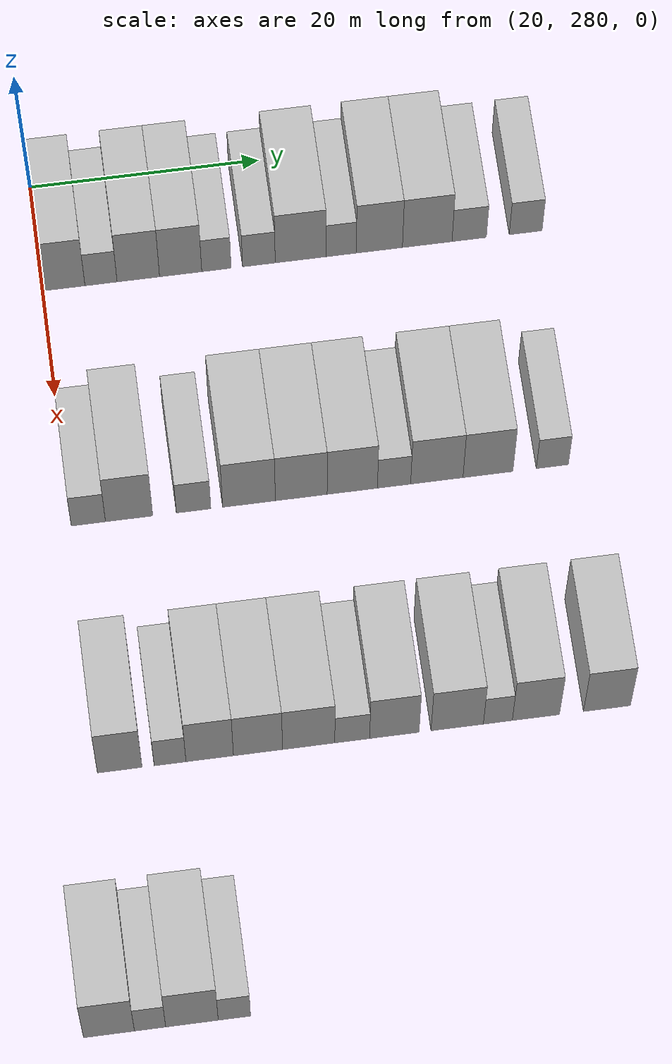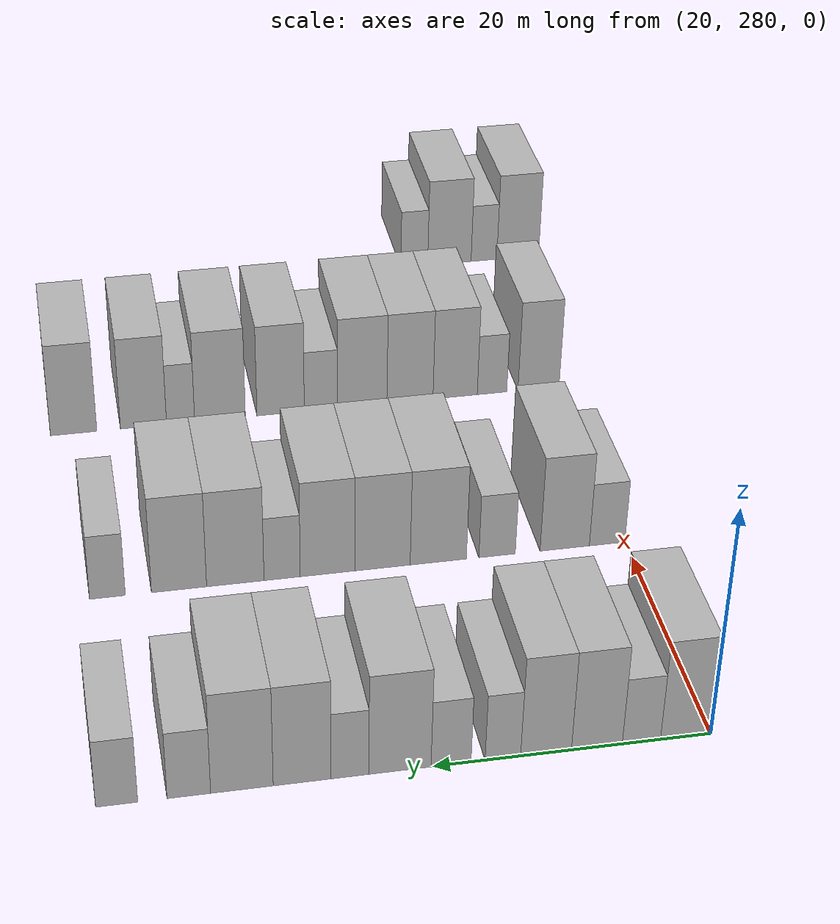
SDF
<sdf version="1.6">
 <world name="default">
  <model name="building_159">
   <static>1</static>
   <pose>25.0000 281.8248 0 0.000000 0.000000 0.000000</pose>
   <link name="link">
    <pose>0 0 4.50 0 0 0</pose>
    <collision name="collision"><geometry><box><size>10.0000 3.6781 9.0000</size></box></geometry></collision>
    <visual name="visual">
     <cast_shadows>0</cast_shadows>
     <geometry><box><size>10.0000 3.6781 9.0000</size></box></geometry>
     <material>
      <script>
       <uri>model://HANNAS_wall/materials/scripts</uri>
       <uri>model://HANNAS_wall/materials/textures</uri>
       <name>vrc/HANNAS_wall</name>
      </script>
     </material>
    </visual>
   </link>
  </model>
  <model name="building_160">
   <static>1</static>
   <pose>25.0000 285.0547 0 0.000000 0.000000 0.000000</pose>
   <link name="link">
    <pose>0 0 3.00 0 0 0</pose>
    <collision name="collision"><geometry><box><size>10.0000 2.7817 6.0000</size></box></geometry></collision>
    <visual name="visual">
     <cast_shadows>0</cast_shadows>
     <geometry><box><size>10.0000 2.7817 6.0000</size></box></geometry>
     <material>
      <script>
       <uri>model://HANNAS_wall/materials/scripts</uri>
       <uri>model://HANNAS_wall/materials/textures</uri>
       <name>vrc/HANNAS_wall</name>
      </script>
     </material>
    </visual>
   </link>
  </model>
  <model name="building_161">
   <static>1</static>
   <pose>25.0000 288.2849 0 0.000000 0.000000 0.000000</pose>
   <link name="link">
    <pose>0 0 4.50 0 0 0</pose>
    <collision name="collision"><geometry><box><size>10.0000 3.6786 9.0000</size></box></geometry></collision>
    <visual name="visual">
     <cast_shadows>0</cast_shadows>
     <geometry><box><size>10.0000 3.6786 9.0000</size></box></geometry>
     <material>
      <script>
       <uri>model://HANNAS_wall/materials/scripts</uri>
       <uri>model://HANNAS_wall/materials/textures</uri>
       <name>vrc/HANNAS_wall</name>
      </script>
     </material>
    </visual>
   </link>
  </model>
  <model name="building_162">
   <static>1</static>
   <pose>25.0000 291.9534 0 0.000000 0.000000 0.000000</pose>
   <link name="link">
    <pose>0 0 4.50 0 0 0</pose>
    <collision name="collision"><geometry><box><size>10.0000 3.6583 9.0000</size></box></geometry></collision>
    <visual name="visual">
     <cast_shadows>0</cast_shadows>
     <geometry><box><size>10.0000 3.6583 9.0000</size></box></geometry>
     <material>
      <script>
       <uri>model://HANNAS_wall/materials/scripts</uri>
       <uri>model://HANNAS_wall/materials/textures</uri>
       <name>vrc/HANNAS_wall</name>
      </script>
     </material>
    </visual>
   </link>
  </model>
  <model name="building_163">
   <static>1</static>
   <pose>25.0000 295.0538 0 0.000000 0.000000 0.000000</pose>
   <link name="link">
    <pose>0 0 3.00 0 0 0</pose>
    <collision name="collision"><geometry><box><size>10.0000 2.5426 6.0000</size></box></geometry></collision>
    <visual name="visual">
     <cast_shadows>0</cast_shadows>
     <geometry><box><size>10.0000 2.5426 6.0000</size></box></geometry>
     <material>
      <script>
       <uri>model://HANNAS_wall/materials/scripts</uri>
       <uri>model://HANNAS_wall/materials/textures</uri>
       <name>vrc/HANNAS_wall</name>
      </script>
     </material>
    </visual>
   </link>
  </model>
  <model name="building_164">
   <static>1</static>
   <pose>25.0000 298.7448 0 0.000000 0.000000 0.000000</pose>
   <link name="link">
    <pose>0 0 3.00 0 0 0</pose>
    <collision name="collision"><geometry><box><size>10.0000 2.8395 6.0000</size></box></geometry></collision>
    <visual name="visual">
     <cast_shadows>0</cast_shadows>
     <geometry><box><size>10.0000 2.8395 6.0000</size></box></geometry>
     <material>
      <script>
       <uri>model://HANNAS_wall/materials/scripts</uri>
       <uri>model://HANNAS_wall/materials/textures</uri>
       <name>vrc/HANNAS_wall</name>
      </script>
     </material>
    </visual>
   </link>
  </model>
  <model name="building_165">
   <static>1</static>
   <pose>25.0000 302.3678 0 0.000000 0.000000 0.000000</pose>
   <link name="link">
    <pose>0 0 4.50 0 0 0</pose>
    <collision name="collision"><geometry><box><size>10.0000 4.4065 9.0000</size></box></geometry></collision>
    <visual name="visual">
     <cast_shadows>0</cast_shadows>
     <geometry><box><size>10.0000 4.4065 9.0000</size></box></geometry>
     <material>
      <script>
       <uri>model://HANNAS_wall/materials/scripts</uri>
       <uri>model://HANNAS_wall/materials/textures</uri>
       <name>vrc/HANNAS_wall</name>
      </script>
     </material>
    </visual>
   </link>
  </model>
  <model name="building_166">
   <static>1</static>
   <pose>25.0000 305.8873 0 0.000000 0.000000 0.000000</pose>
   <link name="link">
    <pose>0 0 3.00 0 0 0</pose>
    <collision name="collision"><geometry><box><size>10.0000 2.6325 6.0000</size></box></geometry></collision>
    <visual name="visual">
     <cast_shadows>0</cast_shadows>
     <geometry><box><size>10.0000 2.6325 6.0000</size></box></geometry>
     <material>
      <script>
       <uri>model://HANNAS_wall/materials/scripts</uri>
       <uri>model://HANNAS_wall/materials/textures</uri>
       <name>vrc/HANNAS_wall</name>
      </script>
     </material>
    </visual>
   </link>
  </model>
  <model name="building_167">
   <static>1</static>
   <pose>25.0000 309.2179 0 0.000000 0.000000 0.000000</pose>
   <link name="link">
    <pose>0 0 4.50 0 0 0</pose>
    <collision name="collision"><geometry><box><size>10.0000 4.0286 9.0000</size></box></geometry></collision>
    <visual name="visual">
     <cast_shadows>0</cast_shadows>
     <geometry><box><size>10.0000 4.0286 9.0000</size></box></geometry>
     <material>
      <script>
       <uri>model://HANNAS_wall/materials/scripts</uri>
       <uri>model://HANNAS_wall/materials/textures</uri>
       <name>vrc/HANNAS_wall</name>
      </script>
     </material>
    </visual>
   </link>
  </model>
  <model name="building_168">
   <static>1</static>
   <pose>25.0000 313.3952 0 0.000000 0.000000 0.000000</pose>
   <link name="link">
    <pose>0 0 4.50 0 0 0</pose>
    <collision name="collision"><geometry><box><size>10.0000 4.3261 9.0000</size></box></geometry></collision>
    <visual name="visual">
     <cast_shadows>0</cast_shadows>
     <geometry><box><size>10.0000 4.3261 9.0000</size></box></geometry>
     <material>
      <script>
       <uri>model://HANNAS_wall/materials/scripts</uri>
       <uri>model://HANNAS_wall/materials/textures</uri>
       <name>vrc/HANNAS_wall</name>
      </script>
     </material>
    </visual>
   </link>
  </model>
  <model name="building_169">
   <static>1</static>
   <pose>25.0000 317.0565 0 0.000000 0.000000 0.000000</pose>
   <link name="link">
    <pose>0 0 3.00 0 0 0</pose>
    <collision name="collision"><geometry><box><size>10.0000 2.9965 6.0000</size></box></geometry></collision>
    <visual name="visual">
     <cast_shadows>0</cast_shadows>
     <geometry><box><size>10.0000 2.9965 6.0000</size></box></geometry>
     <material>
      <script>
       <uri>model://HANNAS_wall/materials/scripts</uri>
       <uri>model://HANNAS_wall/materials/textures</uri>
       <name>vrc/HANNAS_wall</name>
      </script>
     </material>
    </visual>
   </link>
  </model>
  <model name="building_170">
   <static>1</static>
   <pose>25.0000 321.9890 0 0.000000 0.000000 0.000000</pose>
   <link name="link">
    <pose>0 0 3.00 0 0 0</pose>
    <collision name="collision"><geometry><box><size>10.0000 2.8684 6.0000</size></box></geometry></collision>
    <visual name="visual">
     <cast_shadows>0</cast_shadows>
     <geometry><box><size>10.0000 2.8684 6.0000</size></box></geometry>
     <material>
      <script>
       <uri>model://HANNAS_wall/materials/scripts</uri>
       <uri>model://HANNAS_wall/materials/textures</uri>
       <name>vrc/HANNAS_wall</name>
      </script>
     </material>
    </visual>
   </link>
  </model>
  <model name="building_340">
   <static>1</static>
   <pose>47.0000 281.5024 0 0.000000 0.000000 0.000000</pose>
   <link name="link">
    <pose>0 0 3.00 0 0 0</pose>
    <collision name="collision"><geometry><box><size>10.0000 2.8894 6.0000</size></box></geometry></collision>
    <visual name="visual">
     <cast_shadows>0</cast_shadows>
     <geometry><box><size>10.0000 2.8894 6.0000</size></box></geometry>
     <material>
      <script>
       <uri>model://HANNAS_wall/materials/scripts</uri>
       <uri>model://HANNAS_wall/materials/textures</uri>
       <name>vrc/HANNAS_wall</name>
      </script>
     </material>
    </visual>
   </link>
  </model>
  <model name="building_341">
   <static>1</static>
   <pose>47.0000 284.9434 0 0.000000 0.000000 0.000000</pose>
   <link name="link">
    <pose>0 0 4.50 0 0 0</pose>
    <collision name="collision"><geometry><box><size>10.0000 3.9927 9.0000</size></box></geometry></collision>
    <visual name="visual">
     <cast_shadows>0</cast_shadows>
     <geometry><box><size>10.0000 3.9927 9.0000</size></box></geometry>
     <material>
      <script>
       <uri>model://HANNAS_wall/materials/scripts</uri>
       <uri>model://HANNAS_wall/materials/textures</uri>
       <name>vrc/HANNAS_wall</name>
      </script>
     </material>
    </visual>
   </link>
  </model>
  <model name="building_342">
   <static>1</static>
   <pose>47.0000 290.4003 0 0.000000 0.000000 0.000000</pose>
   <link name="link">
    <pose>0 0 3.00 0 0 0</pose>
    <collision name="collision"><geometry><box><size>10.0000 2.9210 6.0000</size></box></geometry></collision>
    <visual name="visual">
     <cast_shadows>0</cast_shadows>
     <geometry><box><size>10.0000 2.9210 6.0000</size></box></geometry>
     <material>
      <script>
       <uri>model://HANNAS_wall/materials/scripts</uri>
       <uri>model://HANNAS_wall/materials/textures</uri>
       <name>vrc/HANNAS_wall</name>
      </script>
     </material>
    </visual>
   </link>
  </model>
  <model name="building_343">
   <static>1</static>
   <pose>47.0000 295.0999 0 0.000000 0.000000 0.000000</pose>
   <link name="link">
    <pose>0 0 4.50 0 0 0</pose>
    <collision name="collision"><geometry><box><size>10.0000 4.4783 9.0000</size></box></geometry></collision>
    <visual name="visual">
     <cast_shadows>0</cast_shadows>
     <geometry><box><size>10.0000 4.4783 9.0000</size></box></geometry>
     <material>
      <script>
       <uri>model://HANNAS_wall/materials/scripts</uri>
       <uri>model://HANNAS_wall/materials/textures</uri>
       <name>vrc/HANNAS_wall</name>
      </script>
     </material>
    </visual>
   </link>
  </model>
  <model name="building_344">
   <static>1</static>
   <pose>47.0000 299.5339 0 0.000000 0.000000 0.000000</pose>
   <link name="link">
    <pose>0 0 4.50 0 0 0</pose>
    <collision name="collision"><geometry><box><size>10.0000 4.3896 9.0000</size></box></geometry></collision>
    <visual name="visual">
     <cast_shadows>0</cast_shadows>
     <geometry><box><size>10.0000 4.3896 9.0000</size></box></geometry>
     <material>
      <script>
       <uri>model://HANNAS_wall/materials/scripts</uri>
       <uri>model://HANNAS_wall/materials/textures</uri>
       <name>vrc/HANNAS_wall</name>
      </script>
     </material>
    </visual>
   </link>
  </model>
  <model name="building_345">
   <static>1</static>
   <pose>47.0000 303.8648 0 0.000000 0.000000 0.000000</pose>
   <link name="link">
    <pose>0 0 4.50 0 0 0</pose>
    <collision name="collision"><geometry><box><size>10.0000 4.2723 9.0000</size></box></geometry></collision>
    <visual name="visual">
     <cast_shadows>0</cast_shadows>
     <geometry><box><size>10.0000 4.2723 9.0000</size></box></geometry>
     <material>
      <script>
       <uri>model://HANNAS_wall/materials/scripts</uri>
       <uri>model://HANNAS_wall/materials/textures</uri>
       <name>vrc/HANNAS_wall</name>
      </script>
     </material>
    </visual>
   </link>
  </model>
  <model name="building_346">
   <static>1</static>
   <pose>47.0000 307.4149 0 0.000000 0.000000 0.000000</pose>
   <link name="link">
    <pose>0 0 3.00 0 0 0</pose>
    <collision name="collision"><geometry><box><size>10.0000 2.8280 6.0000</size></box></geometry></collision>
    <visual name="visual">
     <cast_shadows>0</cast_shadows>
     <geometry><box><size>10.0000 2.8280 6.0000</size></box></geometry>
     <material>
      <script>
       <uri>model://HANNAS_wall/materials/scripts</uri>
       <uri>model://HANNAS_wall/materials/textures</uri>
       <name>vrc/HANNAS_wall</name>
      </script>
     </material>
    </visual>
   </link>
  </model>
  <model name="building_347">
   <static>1</static>
   <pose>47.0000 311.0594 0 0.000000 0.000000 0.000000</pose>
   <link name="link">
    <pose>0 0 4.50 0 0 0</pose>
    <collision name="collision"><geometry><box><size>10.0000 4.4609 9.0000</size></box></geometry></collision>
    <visual name="visual">
     <cast_shadows>0</cast_shadows>
     <geometry><box><size>10.0000 4.4609 9.0000</size></box></geometry>
     <material>
      <script>
       <uri>model://HANNAS_wall/materials/scripts</uri>
       <uri>model://HANNAS_wall/materials/textures</uri>
       <name>vrc/HANNAS_wall</name>
      </script>
     </material>
    </visual>
   </link>
  </model>
  <model name="building_348">
   <static>1</static>
   <pose>47.0000 315.4157 0 0.000000 0.000000 0.000000</pose>
   <link name="link">
    <pose>0 0 4.50 0 0 0</pose>
    <collision name="collision"><geometry><box><size>10.0000 4.2518 9.0000</size></box></geometry></collision>
    <visual name="visual">
     <cast_shadows>0</cast_shadows>
     <geometry><box><size>10.0000 4.2518 9.0000</size></box></geometry>
     <material>
      <script>
       <uri>model://HANNAS_wall/materials/scripts</uri>
       <uri>model://HANNAS_wall/materials/textures</uri>
       <name>vrc/HANNAS_wall</name>
      </script>
     </material>
    </visual>
   </link>
  </model>
  <model name="building_349">
   <static>1</static>
   <pose>47.0000 320.9104 0 0.000000 0.000000 0.000000</pose>
   <link name="link">
    <pose>0 0 3.00 0 0 0</pose>
    <collision name="collision"><geometry><box><size>10.0000 2.7376 6.0000</size></box></geometry></collision>
    <visual name="visual">
     <cast_shadows>0</cast_shadows>
     <geometry><box><size>10.0000 2.7376 6.0000</size></box></geometry>
     <material>
      <script>
       <uri>model://HANNAS_wall/materials/scripts</uri>
       <uri>model://HANNAS_wall/materials/textures</uri>
       <name>vrc/HANNAS_wall</name>
      </script>
     </material>
    </visual>
   </link>
  </model>
  <model name="building_524">
   <static>1</static>
   <pose>69.0000 281.6301 0 0.000000 0.000000 0.000000</pose>
   <link name="link">
    <pose>0 0 4.50 0 0 0</pose>
    <collision name="collision"><geometry><box><size>10.0000 3.6830 9.0000</size></box></geometry></collision>
    <visual name="visual">
     <cast_shadows>0</cast_shadows>
     <geometry><box><size>10.0000 3.6830 9.0000</size></box></geometry>
     <material>
      <script>
       <uri>model://HANNAS_wall/materials/scripts</uri>
       <uri>model://HANNAS_wall/materials/textures</uri>
       <name>vrc/HANNAS_wall</name>
      </script>
     </material>
    </visual>
   </link>
  </model>
  <model name="building_525">
   <static>1</static>
   <pose>69.0000 285.7857 0 0.000000 0.000000 0.000000</pose>
   <link name="link">
    <pose>0 0 3.00 0 0 0</pose>
    <collision name="collision"><geometry><box><size>10.0000 2.6282 6.0000</size></box></geometry></collision>
    <visual name="visual">
     <cast_shadows>0</cast_shadows>
     <geometry><box><size>10.0000 2.6282 6.0000</size></box></geometry>
     <material>
      <script>
       <uri>model://HANNAS_wall/materials/scripts</uri>
       <uri>model://HANNAS_wall/materials/textures</uri>
       <name>vrc/HANNAS_wall</name>
      </script>
     </material>
    </visual>
   </link>
  </model>
  <model name="building_526">
   <static>1</static>
   <pose>69.0000 289.0618 0 0.000000 0.000000 0.000000</pose>
   <link name="link">
    <pose>0 0 4.50 0 0 0</pose>
    <collision name="collision"><geometry><box><size>10.0000 3.9239 9.0000</size></box></geometry></collision>
    <visual name="visual">
     <cast_shadows>0</cast_shadows>
     <geometry><box><size>10.0000 3.9239 9.0000</size></box></geometry>
     <material>
      <script>
       <uri>model://HANNAS_wall/materials/scripts</uri>
       <uri>model://HANNAS_wall/materials/textures</uri>
       <name>vrc/HANNAS_wall</name>
      </script>
     </material>
    </visual>
   </link>
  </model>
  <model name="building_527">
   <static>1</static>
   <pose>69.0000 293.0553 0 0.000000 0.000000 0.000000</pose>
   <link name="link">
    <pose>0 0 4.50 0 0 0</pose>
    <collision name="collision"><geometry><box><size>10.0000 4.0632 9.0000</size></box></geometry></collision>
    <visual name="visual">
     <cast_shadows>0</cast_shadows>
     <geometry><box><size>10.0000 4.0632 9.0000</size></box></geometry>
     <material>
      <script>
       <uri>model://HANNAS_wall/materials/scripts</uri>
       <uri>model://HANNAS_wall/materials/textures</uri>
       <name>vrc/HANNAS_wall</name>
      </script>
     </material>
    </visual>
   </link>
  </model>
  <model name="building_528">
   <static>1</static>
   <pose>69.0000 297.2520 0 0.000000 0.000000 0.000000</pose>
   <link name="link">
    <pose>0 0 4.50 0 0 0</pose>
    <collision name="collision"><geometry><box><size>10.0000 4.3303 9.0000</size></box></geometry></collision>
    <visual name="visual">
     <cast_shadows>0</cast_shadows>
     <geometry><box><size>10.0000 4.3303 9.0000</size></box></geometry>
     <material>
      <script>
       <uri>model://HANNAS_wall/materials/scripts</uri>
       <uri>model://HANNAS_wall/materials/textures</uri>
       <name>vrc/HANNAS_wall</name>
      </script>
     </material>
    </visual>
   </link>
  </model>
  <model name="building_529">
   <static>1</static>
   <pose>69.0000 300.8608 0 0.000000 0.000000 0.000000</pose>
   <link name="link">
    <pose>0 0 3.00 0 0 0</pose>
    <collision name="collision"><geometry><box><size>10.0000 2.8874 6.0000</size></box></geometry></collision>
    <visual name="visual">
     <cast_shadows>0</cast_shadows>
     <geometry><box><size>10.0000 2.8874 6.0000</size></box></geometry>
     <material>
      <script>
       <uri>model://HANNAS_wall/materials/scripts</uri>
       <uri>model://HANNAS_wall/materials/textures</uri>
       <name>vrc/HANNAS_wall</name>
      </script>
     </material>
    </visual>
   </link>
  </model>
  <model name="building_530">
   <static>1</static>
   <pose>69.0000 304.3549 0 0.000000 0.000000 0.000000</pose>
   <link name="link">
    <pose>0 0 4.50 0 0 0</pose>
    <collision name="collision"><geometry><box><size>10.0000 4.1009 9.0000</size></box></geometry></collision>
    <visual name="visual">
     <cast_shadows>0</cast_shadows>
     <geometry><box><size>10.0000 4.1009 9.0000</size></box></geometry>
     <material>
      <script>
       <uri>model://HANNAS_wall/materials/scripts</uri>
       <uri>model://HANNAS_wall/materials/textures</uri>
       <name>vrc/HANNAS_wall</name>
      </script>
     </material>
    </visual>
   </link>
  </model>
  <model name="building_531">
   <static>1</static>
   <pose>69.0000 309.5823 0 0.000000 0.000000 0.000000</pose>
   <link name="link">
    <pose>0 0 4.50 0 0 0</pose>
    <collision name="collision"><geometry><box><size>10.0000 4.3538 9.0000</size></box></geometry></collision>
    <visual name="visual">
     <cast_shadows>0</cast_shadows>
     <geometry><box><size>10.0000 4.3538 9.0000</size></box></geometry>
     <material>
      <script>
       <uri>model://HANNAS_wall/materials/scripts</uri>
       <uri>model://HANNAS_wall/materials/textures</uri>
       <name>vrc/HANNAS_wall</name>
      </script>
     </material>
    </visual>
   </link>
  </model>
  <model name="building_532">
   <static>1</static>
   <pose>69.0000 312.9630 0 0.000000 0.000000 0.000000</pose>
   <link name="link">
    <pose>0 0 3.00 0 0 0</pose>
    <collision name="collision"><geometry><box><size>10.0000 2.4078 6.0000</size></box></geometry></collision>
    <visual name="visual">
     <cast_shadows>0</cast_shadows>
     <geometry><box><size>10.0000 2.4078 6.0000</size></box></geometry>
     <material>
      <script>
       <uri>model://HANNAS_wall/materials/scripts</uri>
       <uri>model://HANNAS_wall/materials/textures</uri>
       <name>vrc/HANNAS_wall</name>
      </script>
     </material>
    </visual>
   </link>
  </model>
  <model name="building_533">
   <static>1</static>
   <pose>69.0000 316.1335 0 0.000000 0.000000 0.000000</pose>
   <link name="link">
    <pose>0 0 4.50 0 0 0</pose>
    <collision name="collision"><geometry><box><size>10.0000 3.9331 9.0000</size></box></geometry></collision>
    <visual name="visual">
     <cast_shadows>0</cast_shadows>
     <geometry><box><size>10.0000 3.9331 9.0000</size></box></geometry>
     <material>
      <script>
       <uri>model://HANNAS_wall/materials/scripts</uri>
       <uri>model://HANNAS_wall/materials/textures</uri>
       <name>vrc/HANNAS_wall</name>
      </script>
     </material>
    </visual>
   </link>
  </model>
  <model name="building_534">
   <static>1</static>
   <pose>69.0000 322.0591 0 0.000000 0.000000 0.000000</pose>
   <link name="link">
    <pose>0 0 4.50 0 0 0</pose>
    <collision name="collision"><geometry><box><size>10.0000 3.9183 9.0000</size></box></geometry></collision>
    <visual name="visual">
     <cast_shadows>0</cast_shadows>
     <geometry><box><size>10.0000 3.9183 9.0000</size></box></geometry>
     <material>
      <script>
       <uri>model://HANNAS_wall/materials/scripts</uri>
       <uri>model://HANNAS_wall/materials/textures</uri>
       <name>vrc/HANNAS_wall</name>
      </script>
     </material>
    </visual>
   </link>
  </model>
  <model name="building_709">
   <static>1</static>
   <pose>91.0000 278.2434 0 0.000000 0.000000 0.000000</pose>
   <link name="link">
    <pose>0 0 4.50 0 0 0</pose>
    <collision name="collision"><geometry><box><size>10.0000 4.0943 9.0000</size></box></geometry></collision>
    <visual name="visual">
     <cast_shadows>0</cast_shadows>
     <geometry><box><size>10.0000 4.0943 9.0000</size></box></geometry>
     <material>
      <script>
       <uri>model://HANNAS_wall/materials/scripts</uri>
       <uri>model://HANNAS_wall/materials/textures</uri>
       <name>vrc/HANNAS_wall</name>
      </script>
     </material>
    </visual>
   </link>
  </model>
  <model name="building_710">
   <static>1</static>
   <pose>91.0000 281.5506 0 0.000000 0.000000 0.000000</pose>
   <link name="link">
    <pose>0 0 3.00 0 0 0</pose>
    <collision name="collision"><geometry><box><size>10.0000 2.5200 6.0000</size></box></geometry></collision>
    <visual name="visual">
     <cast_shadows>0</cast_shadows>
     <geometry><box><size>10.0000 2.5200 6.0000</size></box></geometry>
     <material>
      <script>
       <uri>model://HANNAS_wall/materials/scripts</uri>
       <uri>model://HANNAS_wall/materials/textures</uri>
       <name>vrc/HANNAS_wall</name>
      </script>
     </material>
    </visual>
   </link>
  </model>
  <model name="building_711">
   <static>1</static>
   <pose>91.0000 284.9256 0 0.000000 0.000000 0.000000</pose>
   <link name="link">
    <pose>0 0 4.50 0 0 0</pose>
    <collision name="collision"><geometry><box><size>10.0000 4.2301 9.0000</size></box></geometry></collision>
    <visual name="visual">
     <cast_shadows>0</cast_shadows>
     <geometry><box><size>10.0000 4.2301 9.0000</size></box></geometry>
     <material>
      <script>
       <uri>model://HANNAS_wall/materials/scripts</uri>
       <uri>model://HANNAS_wall/materials/textures</uri>
       <name>vrc/HANNAS_wall</name>
      </script>
     </material>
    </visual>
   </link>
  </model>
  <model name="building_712">
   <static>1</static>
   <pose>91.0000 288.3430 0 0.000000 0.000000 0.000000</pose>
   <link name="link">
    <pose>0 0 3.00 0 0 0</pose>
    <collision name="collision"><geometry><box><size>10.0000 2.6048 6.0000</size></box></geometry></collision>
    <visual name="visual">
     <cast_shadows>0</cast_shadows>
     <geometry><box><size>10.0000 2.6048 6.0000</size></box></geometry>
     <material>
      <script>
       <uri>model://HANNAS_wall/materials/scripts</uri>
       <uri>model://HANNAS_wall/materials/textures</uri>
       <name>vrc/HANNAS_wall</name>
      </script>
     </material>
    </visual>
   </link>
  </model>
 </world>
</sdf>
